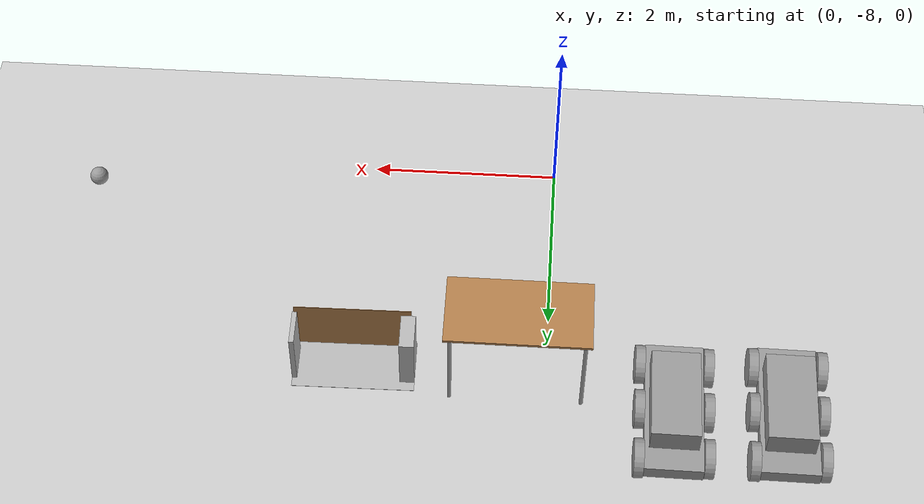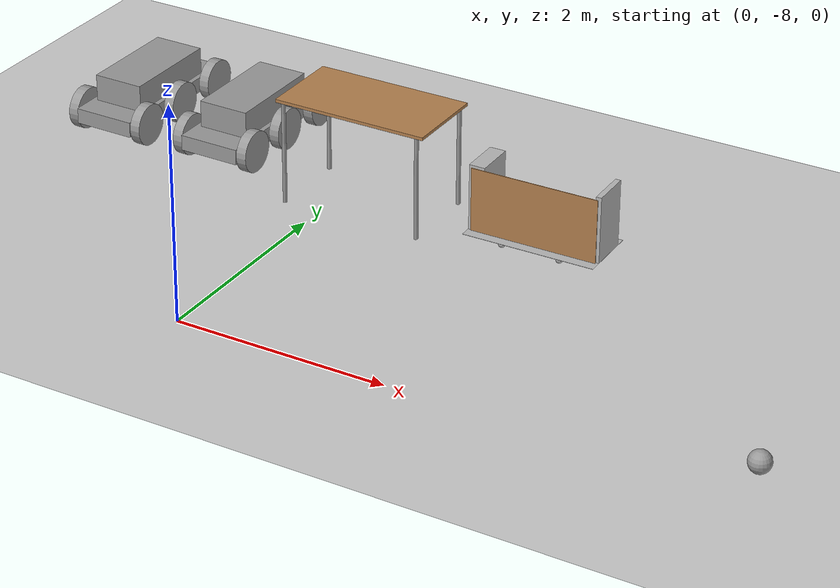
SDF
<sdf version="1.6">
 <world name="default">
  <model name="ground_plane">
   <static>1</static>
   <link name="link">
    <collision name="collision">
     <geometry><plane><normal>0 0 1</normal><size>100 100</size></plane></geometry>
     <surface><friction><ode><mu>100</mu><mu2>50</mu2></ode></friction></surface>
    </collision>
    <visual name="visual">
     <cast_shadows>0</cast_shadows>
     <geometry><plane><normal>0 0 1</normal><size>100 100</size></plane></geometry>
     <material>
      <script><uri>file://media/materials/scripts/gazebo.material</uri><name>Gazebo/Grey</name></script>
     </material>
    </visual>
   </link>
  </model>
  <model name="Humanoid_Robot">
   <link name="link_0">
    <pose>0 -0.004307 -0.025 0 -0 0</pose>
    <inertial>
     <mass>1</mass>
     <inertia>
      <ixx>0.166667</ixx>
      <ixy>0</ixy>
      <ixz>0</ixz>
      <iyy>0.166667</iyy>
      <iyz>0</iyz>
      <izz>0.166667</izz>
     </inertia>
    </inertial>
    <visual name="visual">
     <geometry><box><size>0.6 1.5 0.15</size></box></geometry>
     <material>
      <lighting>1</lighting>
      <script><uri>file://media/materials/scripts/gazebo.material</uri><name>Gazebo/Grey</name></script>
      <shader type="pixel"><normal_map>__default__</normal_map></shader>
      <ambient>0.3 0.3 0.3 1</ambient>
      <diffuse>0.7 0.7 0.7 1</diffuse>
      <specular>0.01 0.01 0.01 1</specular>
      <emissive>0 0 0 1</emissive>
     </material>
    </visual>
    <collision name="collision">
     <geometry><box><size>0.6 1.5 0.15</size></box></geometry>
     <surface>
      <friction>
       <ode><mu>1</mu><mu2>1</mu2><fdir1>0 0 0</fdir1><slip1>0</slip1><slip2>0</slip2></ode>
       <torsional>
        <coefficient>1</coefficient>
        <patch_radius>0</patch_radius>
        <surface_radius>0</surface_radius>
        <use_patch_radius>1</use_patch_radius>
        <ode><slip>0</slip></ode>
       </torsional>
      </friction>
      <bounce><restitution_coefficient>0</restitution_coefficient><threshold>1e+06</threshold></bounce>
      <contact>
       <collide_without_contact>0</collide_without_contact>
       <collide_without_contact_bitmask>1</collide_without_contact_bitmask>
       <collide_bitmask>1</collide_bitmask>
       <ode>
        <soft_cfm>0</soft_cfm>
        <soft_erp>0.2</soft_erp>
        <kp>1e+13</kp>
        <kd>1</kd>
        <max_vel>0.01</max_vel>
        <min_depth>0</min_depth>
       </ode>
       <bullet>
        <split_impulse>1</split_impulse>
        <split_impulse_penetration_threshold>-0.01</split_impulse_penetration_threshold>
        <soft_cfm>0</soft_cfm>
        <soft_erp>0.2</soft_erp>
        <kp>1e+13</kp>
        <kd>1</kd>
       </bullet>
      </contact>
     </surface>
    </collision>
   </link>
   <link name="link_1_clone">
    <pose>-0.351854 0.545219 -0.025 1.57079 -9.6e-05 -1.56152</pose>
    <inertial>
     <mass>1</mass>
     <inertia><ixx>0.145833</ixx><ixy>0</ixy><ixz>0</ixz><iyy>0.145833</iyy><iyz>0</iyz><izz>0.125</izz></inertia>
    </inertial>
    <visual name="visual">
     <geometry><cylinder><radius>0.2</radius><length>0.1</length></cylinder></geometry>
     <material>
      <lighting>1</lighting>
      <script><uri>file://media/materials/scripts/gazebo.material</uri><name>Gazebo/Grey</name></script>
      <shader type="pixel"><normal_map>__default__</normal_map></shader>
      <ambient>0.3 0.3 0.3 1</ambient>
      <diffuse>0.7 0.7 0.7 1</diffuse>
      <specular>0.01 0.01 0.01 1</specular>
      <emissive>0 0 0 1</emissive>
     </material>
    </visual>
    <collision name="collision">
     <geometry><cylinder><radius>0.2</radius><length>0.1</length></cylinder></geometry>
     <surface>
      <friction>
       <ode><mu>1</mu><mu2>1</mu2><fdir1>0 0 0</fdir1><slip1>0</slip1><slip2>0</slip2></ode>
       <torsional>
        <coefficient>1</coefficient>
        <patch_radius>0</patch_radius>
        <surface_radius>0</surface_radius>
        <use_patch_radius>1</use_patch_radius>
        <ode><slip>0</slip></ode>
       </torsional>
      </friction>
      <bounce><restitution_coefficient>0</restitution_coefficient><threshold>1e+06</threshold></bounce>
      <contact>
       <collide_without_contact>0</collide_without_contact>
       <collide_without_contact_bitmask>1</collide_without_contact_bitmask>
       <collide_bitmask>1</collide_bitmask>
       <ode>
        <soft_cfm>0</soft_cfm>
        <soft_erp>0.2</soft_erp>
        <kp>1e+13</kp>
        <kd>1</kd>
        <max_vel>0.01</max_vel>
        <min_depth>0</min_depth>
       </ode>
       <bullet>
        <split_impulse>1</split_impulse>
        <split_impulse_penetration_threshold>-0.01</split_impulse_penetration_threshold>
        <soft_cfm>0</soft_cfm>
        <soft_erp>0.2</soft_erp>
        <kp>1e+13</kp>
        <kd>1</kd>
       </bullet>
      </contact>
     </surface>
    </collision>
   </link>
   <link name="link_1_clone_0">
    <pose>-0.351854 -0.553832 -0.025 1.57079 -9.6e-05 -1.56152</pose>
    <inertial>
     <mass>1</mass>
     <inertia><ixx>0.145833</ixx><ixy>0</ixy><ixz>0</ixz><iyy>0.145833</iyy><iyz>0</iyz><izz>0.125</izz></inertia>
    </inertial>
    <visual name="visual">
     <geometry><cylinder><radius>0.2</radius><length>0.1</length></cylinder></geometry>
     <material>
      <lighting>1</lighting>
      <script><uri>file://media/materials/scripts/gazebo.material</uri><name>Gazebo/Grey</name></script>
      <shader type="pixel"><normal_map>__default__</normal_map></shader>
      <ambient>0.3 0.3 0.3 1</ambient>
      <diffuse>0.7 0.7 0.7 1</diffuse>
      <specular>0.01 0.01 0.01 1</specular>
      <emissive>0 0 0 1</emissive>
     </material>
    </visual>
    <collision name="collision">
     <geometry><cylinder><radius>0.2</radius><length>0.1</length></cylinder></geometry>
     <surface>
      <friction>
       <ode><mu>1</mu><mu2>1</mu2><fdir1>0 0 0</fdir1><slip1>0</slip1><slip2>0</slip2></ode>
       <torsional>
        <coefficient>1</coefficient>
        <patch_radius>0</patch_radius>
        <surface_radius>0</surface_radius>
        <use_patch_radius>1</use_patch_radius>
        <ode><slip>0</slip></ode>
       </torsional>
      </friction>
      <bounce><restitution_coefficient>0</restitution_coefficient><threshold>1e+06</threshold></bounce>
      <contact>
       <collide_without_contact>0</collide_without_contact>
       <collide_without_contact_bitmask>1</collide_without_contact_bitmask>
       <collide_bitmask>1</collide_bitmask>
       <ode>
        <soft_cfm>0</soft_cfm>
        <soft_erp>0.2</soft_erp>
        <kp>1e+13</kp>
        <kd>1</kd>
        <max_vel>0.01</max_vel>
        <min_depth>0</min_depth>
       </ode>
       <bullet>
        <split_impulse>1</split_impulse>
        <split_impulse_penetration_threshold>-0.01</split_impulse_penetration_threshold>
        <soft_cfm>0</soft_cfm>
        <soft_erp>0.2</soft_erp>
        <kp>1e+13</kp>
        <kd>1</kd>
       </bullet>
      </contact>
     </surface>
    </collision>
   </link>
   <link name="link_1_clone_1">
    <pose>0.351854 0.579674 -0.025 1.57079 -9.6e-05 -1.56152</pose>
    <inertial>
     <mass>1</mass>
     <inertia><ixx>0.145833</ixx><ixy>0</ixy><ixz>0</ixz><iyy>0.145833</iyy><iyz>0</iyz><izz>0.125</izz></inertia>
    </inertial>
    <visual name="visual">
     <geometry><cylinder><radius>0.2</radius><length>0.1</length></cylinder></geometry>
     <material>
      <lighting>1</lighting>
      <script><uri>file://media/materials/scripts/gazebo.material</uri><name>Gazebo/Grey</name></script>
      <shader type="pixel"><normal_map>__default__</normal_map></shader>
      <ambient>0.3 0.3 0.3 1</ambient>
      <diffuse>0.7 0.7 0.7 1</diffuse>
      <specular>0.01 0.01 0.01 1</specular>
      <emissive>0 0 0 1</emissive>
     </material>
    </visual>
    <collision name="collision">
     <geometry><cylinder><radius>0.2</radius><length>0.1</length></cylinder></geometry>
     <surface>
      <friction>
       <ode><mu>1</mu><mu2>1</mu2><fdir1>0 0 0</fdir1><slip1>0</slip1><slip2>0</slip2></ode>
       <torsional>
        <coefficient>1</coefficient>
        <patch_radius>0</patch_radius>
        <surface_radius>0</surface_radius>
        <use_patch_radius>1</use_patch_radius>
        <ode><slip>0</slip></ode>
       </torsional>
      </friction>
      <bounce><restitution_coefficient>0</restitution_coefficient><threshold>1e+06</threshold></bounce>
      <contact>
       <collide_without_contact>0</collide_without_contact>
       <collide_without_contact_bitmask>1</collide_without_contact_bitmask>
       <collide_bitmask>1</collide_bitmask>
       <ode>
        <soft_cfm>0</soft_cfm>
        <soft_erp>0.2</soft_erp>
        <kp>1e+13</kp>
        <kd>1</kd>
        <max_vel>0.01</max_vel>
        <min_depth>0</min_depth>
       </ode>
       <bullet>
        <split_impulse>1</split_impulse>
        <split_impulse_penetration_threshold>-0.01</split_impulse_penetration_threshold>
        <soft_cfm>0</soft_cfm>
        <soft_erp>0.2</soft_erp>
        <kp>1e+13</kp>
        <kd>1</kd>
       </bullet>
      </contact>
     </surface>
    </collision>
   </link>
   <link name="link_1_clone_1_clone">
    <pose>0.351854 -0.004307 -0.025 1.57079 -9.6e-05 -1.56152</pose>
    <inertial>
     <mass>1</mass>
     <inertia><ixx>0.145833</ixx><ixy>0</ixy><ixz>0</ixz><iyy>0.145833</iyy><iyz>0</iyz><izz>0.125</izz></inertia>
    </inertial>
    <visual name="visual">
     <geometry><cylinder><radius>0.2</radius><length>0.1</length></cylinder></geometry>
     <material>
      <lighting>1</lighting>
      <script><uri>file://media/materials/scripts/gazebo.material</uri><name>Gazebo/Grey</name></script>
      <shader type="pixel"><normal_map>__default__</normal_map></shader>
      <ambient>0.3 0.3 0.3 1</ambient>
      <diffuse>0.7 0.7 0.7 1</diffuse>
      <specular>0.01 0.01 0.01 1</specular>
      <emissive>0 0 0 1</emissive>
     </material>
    </visual>
    <collision name="collision">
     <geometry><cylinder><radius>0.2</radius><length>0.1</length></cylinder></geometry>
     <surface>
      <friction>
       <ode><mu>1</mu><mu2>1</mu2><fdir1>0 0 0</fdir1><slip1>0</slip1><slip2>0</slip2></ode>
       <torsional>
        <coefficient>1</coefficient>
        <patch_radius>0</patch_radius>
        <surface_radius>0</surface_radius>
        <use_patch_radius>1</use_patch_radius>
        <ode><slip>0</slip></ode>
       </torsional>
      </friction>
      <bounce><restitution_coefficient>0</restitution_coefficient><threshold>1e+06</threshold></bounce>
      <contact>
       <collide_without_contact>0</collide_without_contact>
       <collide_without_contact_bitmask>1</collide_without_contact_bitmask>
       <collide_bitmask>1</collide_bitmask>
       <ode>
        <soft_cfm>0</soft_cfm>
        <soft_erp>0.2</soft_erp>
        <kp>1e+13</kp>
        <kd>1</kd>
        <max_vel>0.01</max_vel>
        <min_depth>0</min_depth>
       </ode>
       <bullet>
        <split_impulse>1</split_impulse>
        <split_impulse_penetration_threshold>-0.01</split_impulse_penetration_threshold>
        <soft_cfm>0</soft_cfm>
        <soft_erp>0.2</soft_erp>
        <kp>1e+13</kp>
        <kd>1</kd>
       </bullet>
      </contact>
     </surface>
    </collision>
   </link>
   <link name="link_1_clone_2">
    <pose>-0.351854 -0.004307 -0.025 1.57079 -9.6e-05 -1.56152</pose>
    <inertial>
     <mass>1</mass>
     <inertia><ixx>0.145833</ixx><ixy>0</ixy><ixz>0</ixz><iyy>0.145833</iyy><iyz>0</iyz><izz>0.125</izz></inertia>
    </inertial>
    <visual name="visual">
     <geometry><cylinder><radius>0.2</radius><length>0.1</length></cylinder></geometry>
     <material>
      <lighting>1</lighting>
      <script><uri>file://media/materials/scripts/gazebo.material</uri><name>Gazebo/Grey</name></script>
      <shader type="pixel"><normal_map>__default__</normal_map></shader>
      <ambient>0.3 0.3 0.3 1</ambient>
      <diffuse>0.7 0.7 0.7 1</diffuse>
      <specular>0.01 0.01 0.01 1</specular>
      <emissive>0 0 0 1</emissive>
     </material>
    </visual>
    <collision name="collision">
     <geometry><cylinder><radius>0.2</radius><length>0.1</length></cylinder></geometry>
     <surface>
      <friction>
       <ode><mu>1</mu><mu2>1</mu2><fdir1>0 0 0</fdir1><slip1>0</slip1><slip2>0</slip2></ode>
       <torsional>
        <coefficient>1</coefficient>
        <patch_radius>0</patch_radius>
        <surface_radius>0</surface_radius>
        <use_patch_radius>1</use_patch_radius>
        <ode><slip>0</slip></ode>
       </torsional>
      </friction>
      <bounce><restitution_coefficient>0</restitution_coefficient><threshold>1e+06</threshold></bounce>
      <contact>
       <collide_without_contact>0</collide_without_contact>
       <collide_without_contact_bitmask>1</collide_without_contact_bitmask>
       <collide_bitmask>1</collide_bitmask>
       <ode>
        <soft_cfm>0</soft_cfm>
        <soft_erp>0.2</soft_erp>
        <kp>1e+13</kp>
        <kd>1</kd>
        <max_vel>0.01</max_vel>
        <min_depth>0</min_depth>
       </ode>
       <bullet>
        <split_impulse>1</split_impulse>
        <split_impulse_penetration_threshold>-0.01</split_impulse_penetration_threshold>
        <soft_cfm>0</soft_cfm>
        <soft_erp>0.2</soft_erp>
        <kp>1e+13</kp>
        <kd>1</kd>
       </bullet>
      </contact>
     </surface>
    </collision>
   </link>
   <link name="link_1_clone_3">
    <pose>0.351854 -0.553832 -0.025 1.57079 -9.6e-05 -1.56152</pose>
    <inertial>
     <mass>1</mass>
     <inertia><ixx>0.145833</ixx><ixy>0</ixy><ixz>0</ixz><iyy>0.145833</iyy><iyz>0</iyz><izz>0.125</izz></inertia>
    </inertial>
    <visual name="visual">
     <geometry><cylinder><radius>0.2</radius><length>0.1</length></cylinder></geometry>
     <material>
      <lighting>1</lighting>
      <script><uri>file://media/materials/scripts/gazebo.material</uri><name>Gazebo/Grey</name></script>
      <shader type="pixel"><normal_map>__default__</normal_map></shader>
      <ambient>0.3 0.3 0.3 1</ambient>
      <diffuse>0.7 0.7 0.7 1</diffuse>
      <specular>0.01 0.01 0.01 1</specular>
      <emissive>0 0 0 1</emissive>
     </material>
    </visual>
    <collision name="collision">
     <geometry><cylinder><radius>0.2</radius><length>0.1</length></cylinder></geometry>
     <surface>
      <friction>
       <ode><mu>1</mu><mu2>1</mu2><fdir1>0 0 0</fdir1><slip1>0</slip1><slip2>0</slip2></ode>
       <torsional>
        <coefficient>1</coefficient>
        <patch_radius>0</patch_radius>
        <surface_radius>0</surface_radius>
        <use_patch_radius>1</use_patch_radius>
        <ode><slip>0</slip></ode>
       </torsional>
      </friction>
      <bounce><restitution_coefficient>0</restitution_coefficient><threshold>1e+06</threshold></bounce>
      <contact>
       <collide_without_contact>0</collide_without_contact>
       <collide_without_contact_bitmask>1</collide_without_contact_bitmask>
       <collide_bitmask>1</collide_bitmask>
       <ode>
        <soft_cfm>0</soft_cfm>
        <soft_erp>0.2</soft_erp>
        <kp>1e+13</kp>
        <kd>1</kd>
        <max_vel>0.01</max_vel>
        <min_depth>0</min_depth>
       </ode>
       <bullet>
        <split_impulse>1</split_impulse>
        <split_impulse_penetration_threshold>-0.01</split_impulse_penetration_threshold>
        <soft_cfm>0</soft_cfm>
        <soft_erp>0.2</soft_erp>
        <kp>1e+13</kp>
        <kd>1</kd>
       </bullet>
      </contact>
     </surface>
    </collision>
   </link>
   <link name="link_2">
    <pose>0 -0.004307 0.175 0 -0 0</pose>
    <inertial>
     <mass>1</mass>
     <inertia>
      <ixx>0.166667</ixx>
      <ixy>0</ixy>
      <ixz>0</ixz>
      <iyy>0.166667</iyy>
      <iyz>0</iyz>
      <izz>0.166667</izz>
     </inertia>
    </inertial>
    <visual name="visual">
     <geometry><box><size>0.5 1 0.27</size></box></geometry>
     <material>
      <lighting>1</lighting>
      <script><uri>file://media/materials/scripts/gazebo.material</uri><name>Gazebo/Grey</name></script>
      <shader type="pixel"><normal_map>__default__</normal_map></shader>
      <ambient>0.3 0.3 0.3 1</ambient>
      <diffuse>0.7 0.7 0.7 1</diffuse>
      <specular>0.01 0.01 0.01 1</specular>
      <emissive>0 0 0 1</emissive>
     </material>
    </visual>
    <collision name="collision">
     <geometry><box><size>0.5 1 0.3</size></box></geometry>
     <surface>
      <friction>
       <ode><mu>1</mu><mu2>1</mu2><fdir1>0 0 0</fdir1><slip1>0</slip1><slip2>0</slip2></ode>
       <torsional>
        <coefficient>1</coefficient>
        <patch_radius>0</patch_radius>
        <surface_radius>0</surface_radius>
        <use_patch_radius>1</use_patch_radius>
        <ode><slip>0</slip></ode>
       </torsional>
      </friction>
      <bounce><restitution_coefficient>0</restitution_coefficient><threshold>1e+06</threshold></bounce>
      <contact>
       <collide_without_contact>0</collide_without_contact>
       <collide_without_contact_bitmask>1</collide_without_contact_bitmask>
       <collide_bitmask>1</collide_bitmask>
       <ode>
        <soft_cfm>0</soft_cfm>
        <soft_erp>0.2</soft_erp>
        <kp>1e+13</kp>
        <kd>1</kd>
        <max_vel>0.01</max_vel>
        <min_depth>0</min_depth>
       </ode>
       <bullet>
        <split_impulse>1</split_impulse>
        <split_impulse_penetration_threshold>-0.01</split_impulse_penetration_threshold>
        <soft_cfm>0</soft_cfm>
        <soft_erp>0.2</soft_erp>
        <kp>1e+13</kp>
        <kd>1</kd>
       </bullet>
      </contact>
     </surface>
    </collision>
   </link>
   <joint name="link_0_JOINT_0" type="revolute">
    <parent>link_0</parent>
    <child>link_1_clone_0</child>
    <axis>
     <xyz>0 0 1</xyz>
     <use_parent_model_frame>0</use_parent_model_frame>
     <limit>
      <lower>-1.79769e+308</lower>
      <upper>1.79769e+308</upper>
      <effort>-1</effort>
      <velocity>-1</velocity>
     </limit>
     <dynamics>
      <spring_reference>0</spring_reference>
      <spring_stiffness>0</spring_stiffness>
      <damping>0</damping>
     </dynamics>
    </axis>
    <physics>
     <ode><limit><cfm>0</cfm><erp>0.2</erp></limit><suspension><cfm>0</cfm><erp>0.2</erp></suspension></ode>
    </physics>
   </joint>
   <joint name="link_0_JOINT_10" type="revolute">
    <parent>link_0</parent>
    <child>link_1_clone_1_clone</child>
    <axis>
     <xyz>0 0 -1</xyz>
     <use_parent_model_frame>0</use_parent_model_frame>
     <limit>
      <lower>-1.79769e+308</lower>
      <upper>1.79769e+308</upper>
      <effort>-1</effort>
      <velocity>-1</velocity>
     </limit>
     <dynamics>
      <spring_reference>0</spring_reference>
      <spring_stiffness>0</spring_stiffness>
      <damping>0</damping>
     </dynamics>
    </axis>
    <physics>
     <ode><limit><cfm>0</cfm><erp>0.2</erp></limit><suspension><cfm>0</cfm><erp>0.2</erp></suspension></ode>
    </physics>
   </joint>
   <joint name="link_0_JOINT_2" type="revolute">
    <parent>link_0</parent>
    <child>link_1_clone_3</child>
    <axis>
     <xyz>0 0 -1</xyz>
     <use_parent_model_frame>0</use_parent_model_frame>
     <limit>
      <lower>-1.79769e+308</lower>
      <upper>1.79769e+308</upper>
      <effort>-1</effort>
      <velocity>-1</velocity>
     </limit>
     <dynamics>
      <spring_reference>0</spring_reference>
      <spring_stiffness>0</spring_stiffness>
      <damping>0</damping>
     </dynamics>
    </axis>
    <physics>
     <ode><limit><cfm>0</cfm><erp>0.2</erp></limit><suspension><cfm>0</cfm><erp>0.2</erp></suspension></ode>
    </physics>
   </joint>
   <joint name="link_0_JOINT_3" type="revolute">
    <parent>link_0</parent>
    <child>link_1_clone_1</child>
    <axis>
     <xyz>0 0 -1</xyz>
     <use_parent_model_frame>0</use_parent_model_frame>
     <limit>
      <lower>-1.79769e+308</lower>
      <upper>1.79769e+308</upper>
      <effort>-1</effort>
      <velocity>-1</velocity>
     </limit>
     <dynamics>
      <spring_reference>0</spring_reference>
      <spring_stiffness>0</spring_stiffness>
      <damping>0</damping>
     </dynamics>
    </axis>
    <physics>
     <ode><limit><cfm>0</cfm><erp>0.2</erp></limit><suspension><cfm>0</cfm><erp>0.2</erp></suspension></ode>
    </physics>
   </joint>
   <joint name="link_0_JOINT_4" type="revolute">
    <parent>link_0</parent>
    <child>link_1_clone</child>
    <axis>
     <xyz>0 0 1</xyz>
     <use_parent_model_frame>0</use_parent_model_frame>
     <limit>
      <lower>-1.79769e+308</lower>
      <upper>1.79769e+308</upper>
      <effort>-1</effort>
      <velocity>-1</velocity>
     </limit>
     <dynamics>
      <spring_reference>0</spring_reference>
      <spring_stiffness>0</spring_stiffness>
      <damping>0</damping>
     </dynamics>
    </axis>
    <physics>
     <ode><limit><cfm>0</cfm><erp>0.2</erp></limit><suspension><cfm>0</cfm><erp>0.2</erp></suspension></ode>
    </physics>
   </joint>
   <joint name="link_0_JOINT_6" type="revolute">
    <parent>link_0</parent>
    <child>link_1_clone_2</child>
    <axis>
     <xyz>0 0 1</xyz>
     <use_parent_model_frame>0</use_parent_model_frame>
     <limit>
      <lower>-1.79769e+308</lower>
      <upper>1.79769e+308</upper>
      <effort>-1</effort>
      <velocity>-1</velocity>
     </limit>
     <dynamics>
      <spring_reference>0</spring_reference>
      <spring_stiffness>0</spring_stiffness>
      <damping>0</damping>
     </dynamics>
    </axis>
    <physics>
     <ode><limit><cfm>0</cfm><erp>0.2</erp></limit><suspension><cfm>0</cfm><erp>0.2</erp></suspension></ode>
    </physics>
   </joint>
   <static>0</static>
   <pose>-1.30239 -4.82109 0.224998 0 6e-06 -0.008391</pose>
  </model>
  <model name="table">
   <static>1</static>
   <link name="link">
    <collision name="surface">
     <pose>0 0 1 0 -0 0</pose>
     <geometry><box><size>1.5 0.8 0.03</size></box></geometry>
     <surface><friction><ode><mu>0.6</mu><mu2>0.6</mu2></ode></friction></surface>
    </collision>
    <visual name="visual1">
     <pose>0 0 1 0 -0 0</pose>
     <geometry><box><size>1.5 0.8 0.03</size></box></geometry>
     <material>
      <script><uri>file://media/materials/scripts/gazebo.material</uri><name>Gazebo/Wood</name></script>
     </material>
    </visual>
    <collision name="front_left_leg">
     <pose>0.68 0.38 0.5 0 -0 0</pose>
     <geometry><cylinder><radius>0.02</radius><length>1</length></cylinder></geometry>
    </collision>
    <visual name="front_left_leg">
     <pose>0.68 0.38 0.5 0 -0 0</pose>
     <geometry><cylinder><radius>0.02</radius><length>1</length></cylinder></geometry>
     <material>
      <script><uri>file://media/materials/scripts/gazebo.material</uri><name>Gazebo/Grey</name></script>
     </material>
    </visual>
    <collision name="front_right_leg">
     <pose>0.68 -0.38 0.5 0 -0 0</pose>
     <geometry><cylinder><radius>0.02</radius><length>1</length></cylinder></geometry>
    </collision>
    <visual name="front_right_leg">
     <pose>0.68 -0.38 0.5 0 -0 0</pose>
     <geometry><cylinder><radius>0.02</radius><length>1</length></cylinder></geometry>
     <material>
      <script><uri>file://media/materials/scripts/gazebo.material</uri><name>Gazebo/Grey</name></script>
     </material>
    </visual>
    <collision name="back_right_leg">
     <pose>-0.68 -0.38 0.5 0 -0 0</pose>
     <geometry><cylinder><radius>0.02</radius><length>1</length></cylinder></geometry>
    </collision>
    <visual name="back_right_leg">
     <pose>-0.68 -0.38 0.5 0 -0 0</pose>
     <geometry><cylinder><radius>0.02</radius><length>1</length></cylinder></geometry>
     <material>
      <script><uri>file://media/materials/scripts/gazebo.material</uri><name>Gazebo/Grey</name></script>
     </material>
    </visual>
    <collision name="back_left_leg">
     <pose>-0.68 0.38 0.5 0 -0 0</pose>
     <geometry><cylinder><radius>0.02</radius><length>1</length></cylinder></geometry>
    </collision>
    <visual name="back_left_leg">
     <pose>-0.68 0.38 0.5 0 -0 0</pose>
     <geometry><cylinder><radius>0.02</radius><length>1</length></cylinder></geometry>
     <material>
      <script><uri>file://media/materials/scripts/gazebo.material</uri><name>Gazebo/Grey</name></script>
     </material>
    </visual>
   </link>
   <pose>0.313078 -5.37194 0 0 -0 0</pose>
  </model>
  <model name="frc2016_sallyport">
   <link name="base">
    <inertial>
     <mass>50</mass>
     <pose>0 0 0.35406 0 -0 0</pose>
     <inertia><ixx>0.727808</ixx><ixy>0</ixy><ixz>0</ixz><iyy>1.77488</iyy><iyz>0</iyz><izz>1.64109</izz></inertia>
    </inertial>
    <visual name="platform">
     <pose>0 0 0.06974 0 -0 0</pose>
     <geometry><box><size>1.27 0.5969 0.003175</size></box></geometry>
    </visual>
    <collision name="platform">
     <pose>0 0 0.06974 0 -0 0</pose>
     <geometry><box><size>1.27 0.5969 0.003175</size></box></geometry>
    </collision>
    <visual name="left_column">
     <pose>-0.5588 0.00318 0.38876 0 -0 0</pose>
     <geometry><box><size>0.1524 0.38735 0.635</size></box></geometry>
    </visual>
    <collision name="left_column">
     <pose>-0.5588 0.00318 0.38876 0 -0 0</pose>
     <geometry><box><size>0.1524 0.38735 0.635</size></box></geometry>
    </collision>
    <visual name="right_column">
     <pose>0.6096 0.00635 0.38876 0 -0 0</pose>
     <geometry><box><size>0.0508 0.381 0.635</size></box></geometry>
    </visual>
    <collision name="right_column">
     <pose>0.6096 0.00635 0.38876 0 -0 0</pose>
     <geometry><box><size>0.0508 0.381 0.635</size></box></geometry>
    </collision>
    <visual name="castor1">
     <pose>-0.45886 0.15389 0.03487 0 -0 0</pose>
     <geometry><sphere><radius>0.03487</radius></sphere></geometry>
    </visual>
    <collision name="castor1">
     <pose>-0.45886 0.15389 0.03487 0 -0 0</pose>
     <geometry><sphere><radius>0.03487</radius></sphere></geometry>
    </collision>
    <visual name="castor2">
     <pose>-0.28117 -0.22559 0.03487 0 -0 0</pose>
     <geometry><sphere><radius>0.03487</radius></sphere></geometry>
    </visual>
    <collision name="castor2">
     <pose>-0.28117 -0.22559 0.03487 0 -0 0</pose>
     <geometry><sphere><radius>0.03487</radius></sphere></geometry>
    </collision>
    <visual name="castor3">
     <pose>0.27933 -0.2272 0.03487 0 -0 0</pose>
     <geometry><sphere><radius>0.03487</radius></sphere></geometry>
    </visual>
    <collision name="castor3">
     <pose>0.27933 -0.2272 0.03487 0 -0 0</pose>
     <geometry><sphere><radius>0.03487</radius></sphere></geometry>
    </collision>
    <visual name="castor4">
     <pose>0.4571 0.15424 0.03487 0 -0 0</pose>
     <geometry><sphere><radius>0.03487</radius></sphere></geometry>
    </visual>
    <collision name="castor4">
     <pose>0.4571 0.15424 0.03487 0 -0 0</pose>
     <geometry><sphere><radius>0.03487</radius></sphere></geometry>
    </collision>
   </link>
   <link name="door">
    <pose>0.02255 -0.24321 0.40332 0 -0 0</pose>
    <inertial>
     <pose>0 0 0 -1.5707 0 0</pose>
     <mass>2</mass>
     <inertia>
      <ixx>0.0619421</ixx>
      <ixy>0</ixy>
      <ixz>0</ixz>
      <iyy>0.246462</iyy>
      <iyz>0</iyz>
      <izz>0.30839</izz>
     </inertia>
    </inertial>
    <visual name="visual">
     <geometry><box><size>1.21603 0.00635 0.6096</size></box></geometry>
     <material><script><name>Gazebo/WoodFloor</name><uri>__default__</uri></script></material>
    </visual>
    <collision name="collision"><geometry><box><size>1.21603 0.00635 0.6096</size></box></geometry></collision>
   </link>
   <joint name="door_joint" type="revolute">
    <pose>-0.608015 0 0 0 -0 0</pose>
    <parent>base</parent>
    <child>door</child>
    <axis>
     <xyz>0 0 1</xyz>
     <limit><lower>-3.1415</lower><upper>0</upper></limit>
     <use_parent_model_frame>0</use_parent_model_frame>
     <dynamics><spring_reference>0</spring_reference><spring_stiffness>0</spring_stiffness></dynamics>
    </axis>
   </joint>
   <pose>1.9972 -5.27543 0 -2e-06 -0 0.012791</pose>
  </model>
  <model name="Humanoid_Robot_clone">
   <link name="link_0">
    <pose>0 -0.004307 -0.025 0 -0 0</pose>
    <inertial>
     <mass>1</mass>
     <inertia>
      <ixx>0.166667</ixx>
      <ixy>0</ixy>
      <ixz>0</ixz>
      <iyy>0.166667</iyy>
      <iyz>0</iyz>
      <izz>0.166667</izz>
     </inertia>
    </inertial>
    <visual name="visual">
     <geometry><box><size>0.6 1.5 0.15</size></box></geometry>
     <material>
      <lighting>1</lighting>
      <script><uri>file://media/materials/scripts/gazebo.material</uri><name>Gazebo/Grey</name></script>
      <shader type="pixel"><normal_map>__default__</normal_map></shader>
      <ambient>0.3 0.3 0.3 1</ambient>
      <diffuse>0.7 0.7 0.7 1</diffuse>
      <specular>0.01 0.01 0.01 1</specular>
      <emissive>0 0 0 1</emissive>
     </material>
    </visual>
    <collision name="collision">
     <geometry><box><size>0.6 1.5 0.15</size></box></geometry>
     <surface>
      <friction>
       <ode><mu>1</mu><mu2>1</mu2><fdir1>0 0 0</fdir1><slip1>0</slip1><slip2>0</slip2></ode>
       <torsional>
        <coefficient>1</coefficient>
        <patch_radius>0</patch_radius>
        <surface_radius>0</surface_radius>
        <use_patch_radius>1</use_patch_radius>
        <ode><slip>0</slip></ode>
       </torsional>
      </friction>
      <bounce><restitution_coefficient>0</restitution_coefficient><threshold>1e+06</threshold></bounce>
      <contact>
       <collide_without_contact>0</collide_without_contact>
       <collide_without_contact_bitmask>1</collide_without_contact_bitmask>
       <collide_bitmask>1</collide_bitmask>
       <ode>
        <soft_cfm>0</soft_cfm>
        <soft_erp>0.2</soft_erp>
        <kp>1e+13</kp>
        <kd>1</kd>
        <max_vel>0.01</max_vel>
        <min_depth>0</min_depth>
       </ode>
       <bullet>
        <split_impulse>1</split_impulse>
        <split_impulse_penetration_threshold>-0.01</split_impulse_penetration_threshold>
        <soft_cfm>0</soft_cfm>
        <soft_erp>0.2</soft_erp>
        <kp>1e+13</kp>
        <kd>1</kd>
       </bullet>
      </contact>
     </surface>
    </collision>
   </link>
   <link name="link_1_clone">
    <pose>-0.351854 0.545219 -0.025 1.57079 -9.6e-05 -1.56152</pose>
    <inertial>
     <mass>1</mass>
     <inertia><ixx>0.145833</ixx><ixy>0</ixy><ixz>0</ixz><iyy>0.145833</iyy><iyz>0</iyz><izz>0.125</izz></inertia>
    </inertial>
    <visual name="visual">
     <geometry><cylinder><radius>0.2</radius><length>0.1</length></cylinder></geometry>
     <material>
      <lighting>1</lighting>
      <script><uri>file://media/materials/scripts/gazebo.material</uri><name>Gazebo/Grey</name></script>
      <shader type="pixel"><normal_map>__default__</normal_map></shader>
      <ambient>0.3 0.3 0.3 1</ambient>
      <diffuse>0.7 0.7 0.7 1</diffuse>
      <specular>0.01 0.01 0.01 1</specular>
      <emissive>0 0 0 1</emissive>
     </material>
    </visual>
    <collision name="collision">
     <geometry><cylinder><radius>0.2</radius><length>0.1</length></cylinder></geometry>
     <surface>
      <friction>
       <ode><mu>1</mu><mu2>1</mu2><fdir1>0 0 0</fdir1><slip1>0</slip1><slip2>0</slip2></ode>
       <torsional>
        <coefficient>1</coefficient>
        <patch_radius>0</patch_radius>
        <surface_radius>0</surface_radius>
        <use_patch_radius>1</use_patch_radius>
        <ode><slip>0</slip></ode>
       </torsional>
      </friction>
      <bounce><restitution_coefficient>0</restitution_coefficient><threshold>1e+06</threshold></bounce>
      <contact>
       <collide_without_contact>0</collide_without_contact>
       <collide_without_contact_bitmask>1</collide_without_contact_bitmask>
       <collide_bitmask>1</collide_bitmask>
       <ode>
        <soft_cfm>0</soft_cfm>
        <soft_erp>0.2</soft_erp>
        <kp>1e+13</kp>
        <kd>1</kd>
        <max_vel>0.01</max_vel>
        <min_depth>0</min_depth>
       </ode>
       <bullet>
        <split_impulse>1</split_impulse>
        <split_impulse_penetration_threshold>-0.01</split_impulse_penetration_threshold>
        <soft_cfm>0</soft_cfm>
        <soft_erp>0.2</soft_erp>
        <kp>1e+13</kp>
        <kd>1</kd>
       </bullet>
      </contact>
     </surface>
    </collision>
   </link>
   <link name="link_1_clone_0">
    <pose>-0.351854 -0.553832 -0.025 1.57079 -9.6e-05 -1.56152</pose>
    <inertial>
     <mass>1</mass>
     <inertia><ixx>0.145833</ixx><ixy>0</ixy><ixz>0</ixz><iyy>0.145833</iyy><iyz>0</iyz><izz>0.125</izz></inertia>
    </inertial>
    <visual name="visual">
     <geometry><cylinder><radius>0.2</radius><length>0.1</length></cylinder></geometry>
     <material>
      <lighting>1</lighting>
      <script><uri>file://media/materials/scripts/gazebo.material</uri><name>Gazebo/Grey</name></script>
      <shader type="pixel"><normal_map>__default__</normal_map></shader>
      <ambient>0.3 0.3 0.3 1</ambient>
      <diffuse>0.7 0.7 0.7 1</diffuse>
      <specular>0.01 0.01 0.01 1</specular>
      <emissive>0 0 0 1</emissive>
     </material>
    </visual>
    <collision name="collision">
     <geometry><cylinder><radius>0.2</radius><length>0.1</length></cylinder></geometry>
     <surface>
      <friction>
       <ode><mu>1</mu><mu2>1</mu2><fdir1>0 0 0</fdir1><slip1>0</slip1><slip2>0</slip2></ode>
       <torsional>
        <coefficient>1</coefficient>
        <patch_radius>0</patch_radius>
        <surface_radius>0</surface_radius>
        <use_patch_radius>1</use_patch_radius>
        <ode><slip>0</slip></ode>
       </torsional>
      </friction>
      <bounce><restitution_coefficient>0</restitution_coefficient><threshold>1e+06</threshold></bounce>
      <contact>
       <collide_without_contact>0</collide_without_contact>
       <collide_without_contact_bitmask>1</collide_without_contact_bitmask>
       <collide_bitmask>1</collide_bitmask>
       <ode>
        <soft_cfm>0</soft_cfm>
        <soft_erp>0.2</soft_erp>
        <kp>1e+13</kp>
        <kd>1</kd>
        <max_vel>0.01</max_vel>
        <min_depth>0</min_depth>
       </ode>
       <bullet>
        <split_impulse>1</split_impulse>
        <split_impulse_penetration_threshold>-0.01</split_impulse_penetration_threshold>
        <soft_cfm>0</soft_cfm>
        <soft_erp>0.2</soft_erp>
        <kp>1e+13</kp>
        <kd>1</kd>
       </bullet>
      </contact>
     </surface>
    </collision>
   </link>
   <link name="link_1_clone_1">
    <pose>0.351854 0.579674 -0.025 1.57079 -9.6e-05 -1.56152</pose>
    <inertial>
     <mass>1</mass>
     <inertia><ixx>0.145833</ixx><ixy>0</ixy><ixz>0</ixz><iyy>0.145833</iyy><iyz>0</iyz><izz>0.125</izz></inertia>
    </inertial>
    <visual name="visual">
     <geometry><cylinder><radius>0.2</radius><length>0.1</length></cylinder></geometry>
     <material>
      <lighting>1</lighting>
      <script><uri>file://media/materials/scripts/gazebo.material</uri><name>Gazebo/Grey</name></script>
      <shader type="pixel"><normal_map>__default__</normal_map></shader>
      <ambient>0.3 0.3 0.3 1</ambient>
      <diffuse>0.7 0.7 0.7 1</diffuse>
      <specular>0.01 0.01 0.01 1</specular>
      <emissive>0 0 0 1</emissive>
     </material>
    </visual>
    <collision name="collision">
     <geometry><cylinder><radius>0.2</radius><length>0.1</length></cylinder></geometry>
     <surface>
      <friction>
       <ode><mu>1</mu><mu2>1</mu2><fdir1>0 0 0</fdir1><slip1>0</slip1><slip2>0</slip2></ode>
       <torsional>
        <coefficient>1</coefficient>
        <patch_radius>0</patch_radius>
        <surface_radius>0</surface_radius>
        <use_patch_radius>1</use_patch_radius>
        <ode><slip>0</slip></ode>
       </torsional>
      </friction>
      <bounce><restitution_coefficient>0</restitution_coefficient><threshold>1e+06</threshold></bounce>
      <contact>
       <collide_without_contact>0</collide_without_contact>
       <collide_without_contact_bitmask>1</collide_without_contact_bitmask>
       <collide_bitmask>1</collide_bitmask>
       <ode>
        <soft_cfm>0</soft_cfm>
        <soft_erp>0.2</soft_erp>
        <kp>1e+13</kp>
        <kd>1</kd>
        <max_vel>0.01</max_vel>
        <min_depth>0</min_depth>
       </ode>
       <bullet>
        <split_impulse>1</split_impulse>
        <split_impulse_penetration_threshold>-0.01</split_impulse_penetration_threshold>
        <soft_cfm>0</soft_cfm>
        <soft_erp>0.2</soft_erp>
        <kp>1e+13</kp>
        <kd>1</kd>
       </bullet>
      </contact>
     </surface>
    </collision>
   </link>
   <link name="link_1_clone_1_clone">
    <pose>0.351854 -0.004307 -0.025 1.57079 -9.6e-05 -1.56152</pose>
    <inertial>
     <mass>1</mass>
     <inertia><ixx>0.145833</ixx><ixy>0</ixy><ixz>0</ixz><iyy>0.145833</iyy><iyz>0</iyz><izz>0.125</izz></inertia>
    </inertial>
    <visual name="visual">
     <geometry><cylinder><radius>0.2</radius><length>0.1</length></cylinder></geometry>
     <material>
      <lighting>1</lighting>
      <script><uri>file://media/materials/scripts/gazebo.material</uri><name>Gazebo/Grey</name></script>
      <shader type="pixel"><normal_map>__default__</normal_map></shader>
      <ambient>0.3 0.3 0.3 1</ambient>
      <diffuse>0.7 0.7 0.7 1</diffuse>
      <specular>0.01 0.01 0.01 1</specular>
      <emissive>0 0 0 1</emissive>
     </material>
    </visual>
    <collision name="collision">
     <geometry><cylinder><radius>0.2</radius><length>0.1</length></cylinder></geometry>
     <surface>
      <friction>
       <ode><mu>1</mu><mu2>1</mu2><fdir1>0 0 0</fdir1><slip1>0</slip1><slip2>0</slip2></ode>
       <torsional>
        <coefficient>1</coefficient>
        <patch_radius>0</patch_radius>
        <surface_radius>0</surface_radius>
        <use_patch_radius>1</use_patch_radius>
        <ode><slip>0</slip></ode>
       </torsional>
      </friction>
      <bounce><restitution_coefficient>0</restitution_coefficient><threshold>1e+06</threshold></bounce>
      <contact>
       <collide_without_contact>0</collide_without_contact>
       <collide_without_contact_bitmask>1</collide_without_contact_bitmask>
       <collide_bitmask>1</collide_bitmask>
       <ode>
        <soft_cfm>0</soft_cfm>
        <soft_erp>0.2</soft_erp>
        <kp>1e+13</kp>
        <kd>1</kd>
        <max_vel>0.01</max_vel>
        <min_depth>0</min_depth>
       </ode>
       <bullet>
        <split_impulse>1</split_impulse>
        <split_impulse_penetration_threshold>-0.01</split_impulse_penetration_threshold>
        <soft_cfm>0</soft_cfm>
        <soft_erp>0.2</soft_erp>
        <kp>1e+13</kp>
        <kd>1</kd>
       </bullet>
      </contact>
     </surface>
    </collision>
   </link>
   <link name="link_1_clone_2">
    <pose>-0.351854 -0.004307 -0.025 1.57079 -9.6e-05 -1.56152</pose>
    <inertial>
     <mass>1</mass>
     <inertia><ixx>0.145833</ixx><ixy>0</ixy><ixz>0</ixz><iyy>0.145833</iyy><iyz>0</iyz><izz>0.125</izz></inertia>
    </inertial>
    <visual name="visual">
     <geometry><cylinder><radius>0.2</radius><length>0.1</length></cylinder></geometry>
     <material>
      <lighting>1</lighting>
      <script><uri>file://media/materials/scripts/gazebo.material</uri><name>Gazebo/Grey</name></script>
      <shader type="pixel"><normal_map>__default__</normal_map></shader>
      <ambient>0.3 0.3 0.3 1</ambient>
      <diffuse>0.7 0.7 0.7 1</diffuse>
      <specular>0.01 0.01 0.01 1</specular>
      <emissive>0 0 0 1</emissive>
     </material>
    </visual>
    <collision name="collision">
     <geometry><cylinder><radius>0.2</radius><length>0.1</length></cylinder></geometry>
     <surface>
      <friction>
       <ode><mu>1</mu><mu2>1</mu2><fdir1>0 0 0</fdir1><slip1>0</slip1><slip2>0</slip2></ode>
       <torsional>
        <coefficient>1</coefficient>
        <patch_radius>0</patch_radius>
        <surface_radius>0</surface_radius>
        <use_patch_radius>1</use_patch_radius>
        <ode><slip>0</slip></ode>
       </torsional>
      </friction>
      <bounce><restitution_coefficient>0</restitution_coefficient><threshold>1e+06</threshold></bounce>
      <contact>
       <collide_without_contact>0</collide_without_contact>
       <collide_without_contact_bitmask>1</collide_without_contact_bitmask>
       <collide_bitmask>1</collide_bitmask>
       <ode>
        <soft_cfm>0</soft_cfm>
        <soft_erp>0.2</soft_erp>
        <kp>1e+13</kp>
        <kd>1</kd>
        <max_vel>0.01</max_vel>
        <min_depth>0</min_depth>
       </ode>
       <bullet>
        <split_impulse>1</split_impulse>
        <split_impulse_penetration_threshold>-0.01</split_impulse_penetration_threshold>
        <soft_cfm>0</soft_cfm>
        <soft_erp>0.2</soft_erp>
        <kp>1e+13</kp>
        <kd>1</kd>
       </bullet>
      </contact>
     </surface>
    </collision>
   </link>
   <link name="link_1_clone_3">
    <pose>0.351854 -0.553832 -0.025 1.57079 -9.6e-05 -1.56152</pose>
    <inertial>
     <mass>1</mass>
     <inertia><ixx>0.145833</ixx><ixy>0</ixy><ixz>0</ixz><iyy>0.145833</iyy><iyz>0</iyz><izz>0.125</izz></inertia>
    </inertial>
    <visual name="visual">
     <geometry><cylinder><radius>0.2</radius><length>0.1</length></cylinder></geometry>
     <material>
      <lighting>1</lighting>
      <script><uri>file://media/materials/scripts/gazebo.material</uri><name>Gazebo/Grey</name></script>
      <shader type="pixel"><normal_map>__default__</normal_map></shader>
      <ambient>0.3 0.3 0.3 1</ambient>
      <diffuse>0.7 0.7 0.7 1</diffuse>
      <specular>0.01 0.01 0.01 1</specular>
      <emissive>0 0 0 1</emissive>
     </material>
    </visual>
    <collision name="collision">
     <geometry><cylinder><radius>0.2</radius><length>0.1</length></cylinder></geometry>
     <surface>
      <friction>
       <ode><mu>1</mu><mu2>1</mu2><fdir1>0 0 0</fdir1><slip1>0</slip1><slip2>0</slip2></ode>
       <torsional>
        <coefficient>1</coefficient>
        <patch_radius>0</patch_radius>
        <surface_radius>0</surface_radius>
        <use_patch_radius>1</use_patch_radius>
        <ode><slip>0</slip></ode>
       </torsional>
      </friction>
      <bounce><restitution_coefficient>0</restitution_coefficient><threshold>1e+06</threshold></bounce>
      <contact>
       <collide_without_contact>0</collide_without_contact>
       <collide_without_contact_bitmask>1</collide_without_contact_bitmask>
       <collide_bitmask>1</collide_bitmask>
       <ode>
        <soft_cfm>0</soft_cfm>
        <soft_erp>0.2</soft_erp>
        <kp>1e+13</kp>
        <kd>1</kd>
        <max_vel>0.01</max_vel>
        <min_depth>0</min_depth>
       </ode>
       <bullet>
        <split_impulse>1</split_impulse>
        <split_impulse_penetration_threshold>-0.01</split_impulse_penetration_threshold>
        <soft_cfm>0</soft_cfm>
        <soft_erp>0.2</soft_erp>
        <kp>1e+13</kp>
        <kd>1</kd>
       </bullet>
      </contact>
     </surface>
    </collision>
   </link>
   <link name="link_2">
    <pose>0 -0.004307 0.175 0 -0 0</pose>
    <inertial>
     <mass>1</mass>
     <inertia>
      <ixx>0.166667</ixx>
      <ixy>0</ixy>
      <ixz>0</ixz>
      <iyy>0.166667</iyy>
      <iyz>0</iyz>
      <izz>0.166667</izz>
     </inertia>
    </inertial>
    <visual name="visual">
     <geometry><box><size>0.5 1 0.27</size></box></geometry>
     <material>
      <lighting>1</lighting>
      <script><uri>file://media/materials/scripts/gazebo.material</uri><name>Gazebo/Grey</name></script>
      <shader type="pixel"><normal_map>__default__</normal_map></shader>
      <ambient>0.3 0.3 0.3 1</ambient>
      <diffuse>0.7 0.7 0.7 1</diffuse>
      <specular>0.01 0.01 0.01 1</specular>
      <emissive>0 0 0 1</emissive>
     </material>
    </visual>
    <collision name="collision">
     <geometry><box><size>0.5 1 0.3</size></box></geometry>
     <surface>
      <friction>
       <ode><mu>1</mu><mu2>1</mu2><fdir1>0 0 0</fdir1><slip1>0</slip1><slip2>0</slip2></ode>
       <torsional>
        <coefficient>1</coefficient>
        <patch_radius>0</patch_radius>
        <surface_radius>0</surface_radius>
        <use_patch_radius>1</use_patch_radius>
        <ode><slip>0</slip></ode>
       </torsional>
      </friction>
      <bounce><restitution_coefficient>0</restitution_coefficient><threshold>1e+06</threshold></bounce>
      <contact>
       <collide_without_contact>0</collide_without_contact>
       <collide_without_contact_bitmask>1</collide_without_contact_bitmask>
       <collide_bitmask>1</collide_bitmask>
       <ode>
        <soft_cfm>0</soft_cfm>
        <soft_erp>0.2</soft_erp>
        <kp>1e+13</kp>
        <kd>1</kd>
        <max_vel>0.01</max_vel>
        <min_depth>0</min_depth>
       </ode>
       <bullet>
        <split_impulse>1</split_impulse>
        <split_impulse_penetration_threshold>-0.01</split_impulse_penetration_threshold>
        <soft_cfm>0</soft_cfm>
        <soft_erp>0.2</soft_erp>
        <kp>1e+13</kp>
        <kd>1</kd>
       </bullet>
      </contact>
     </surface>
    </collision>
   </link>
   <joint name="link_0_JOINT_0" type="revolute">
    <parent>link_0</parent>
    <child>link_1_clone_0</child>
    <axis>
     <xyz>0 0 1</xyz>
     <use_parent_model_frame>0</use_parent_model_frame>
     <limit>
      <lower>-1.79769e+308</lower>
      <upper>1.79769e+308</upper>
      <effort>-1</effort>
      <velocity>-1</velocity>
     </limit>
     <dynamics>
      <spring_reference>0</spring_reference>
      <spring_stiffness>0</spring_stiffness>
      <damping>0</damping>
     </dynamics>
    </axis>
    <physics>
     <ode><limit><cfm>0</cfm><erp>0.2</erp></limit><suspension><cfm>0</cfm><erp>0.2</erp></suspension></ode>
    </physics>
   </joint>
   <joint name="link_0_JOINT_10" type="revolute">
    <parent>link_0</parent>
    <child>link_1_clone_1_clone</child>
    <axis>
     <xyz>0 0 -1</xyz>
     <use_parent_model_frame>0</use_parent_model_frame>
     <limit>
      <lower>-1.79769e+308</lower>
      <upper>1.79769e+308</upper>
      <effort>-1</effort>
      <velocity>-1</velocity>
     </limit>
     <dynamics>
      <spring_reference>0</spring_reference>
      <spring_stiffness>0</spring_stiffness>
      <damping>0</damping>
     </dynamics>
    </axis>
    <physics>
     <ode><limit><cfm>0</cfm><erp>0.2</erp></limit><suspension><cfm>0</cfm><erp>0.2</erp></suspension></ode>
    </physics>
   </joint>
   <joint name="link_0_JOINT_2" type="revolute">
    <parent>link_0</parent>
    <child>link_1_clone_3</child>
    <axis>
     <xyz>0 0 -1</xyz>
     <use_parent_model_frame>0</use_parent_model_frame>
     <limit>
      <lower>-1.79769e+308</lower>
      <upper>1.79769e+308</upper>
      <effort>-1</effort>
      <velocity>-1</velocity>
     </limit>
     <dynamics>
      <spring_reference>0</spring_reference>
      <spring_stiffness>0</spring_stiffness>
      <damping>0</damping>
     </dynamics>
    </axis>
    <physics>
     <ode><limit><cfm>0</cfm><erp>0.2</erp></limit><suspension><cfm>0</cfm><erp>0.2</erp></suspension></ode>
    </physics>
   </joint>
   <joint name="link_0_JOINT_3" type="revolute">
    <parent>link_0</parent>
    <child>link_1_clone_1</child>
    <axis>
     <xyz>0 0 -1</xyz>
     <use_parent_model_frame>0</use_parent_model_frame>
     <limit>
      <lower>-1.79769e+308</lower>
      <upper>1.79769e+308</upper>
      <effort>-1</effort>
      <velocity>-1</velocity>
     </limit>
     <dynamics>
      <spring_reference>0</spring_reference>
      <spring_stiffness>0</spring_stiffness>
      <damping>0</damping>
     </dynamics>
    </axis>
    <physics>
     <ode><limit><cfm>0</cfm><erp>0.2</erp></limit><suspension><cfm>0</cfm><erp>0.2</erp></suspension></ode>
    </physics>
   </joint>
   <joint name="link_0_JOINT_4" type="revolute">
    <parent>link_0</parent>
    <child>link_1_clone</child>
    <axis>
     <xyz>0 0 1</xyz>
     <use_parent_model_frame>0</use_parent_model_frame>
     <limit>
      <lower>-1.79769e+308</lower>
      <upper>1.79769e+308</upper>
      <effort>-1</effort>
      <velocity>-1</velocity>
     </limit>
     <dynamics>
      <spring_reference>0</spring_reference>
      <spring_stiffness>0</spring_stiffness>
      <damping>0</damping>
     </dynamics>
    </axis>
    <physics>
     <ode><limit><cfm>0</cfm><erp>0.2</erp></limit><suspension><cfm>0</cfm><erp>0.2</erp></suspension></ode>
    </physics>
   </joint>
   <joint name="link_0_JOINT_6" type="revolute">
    <parent>link_0</parent>
    <child>link_1_clone_2</child>
    <axis>
     <xyz>0 0 1</xyz>
     <use_parent_model_frame>0</use_parent_model_frame>
     <limit>
      <lower>-1.79769e+308</lower>
      <upper>1.79769e+308</upper>
      <effort>-1</effort>
      <velocity>-1</velocity>
     </limit>
     <dynamics>
      <spring_reference>0</spring_reference>
      <spring_stiffness>0</spring_stiffness>
      <damping>0</damping>
     </dynamics>
    </axis>
    <physics>
     <ode><limit><cfm>0</cfm><erp>0.2</erp></limit><suspension><cfm>0</cfm><erp>0.2</erp></suspension></ode>
    </physics>
   </joint>
   <static>0</static>
   <pose>-2.46101 -4.85473 0.225 0 0 -0.008205</pose>
  </model>
  <model name="my_ball">
   <link name="link_0">
    <inertial>
     <mass>1</mass>
     <inertia><ixx>0.1</ixx><ixy>0</ixy><ixz>0</ixz><iyy>0.1</iyy><iyz>0</iyz><izz>0.1</izz></inertia>
    </inertial>
    <visual name="visual">
     <geometry><sphere><radius>0.1</radius></sphere></geometry>
     <material>
      <lighting>1</lighting>
      <script><uri>file://media/materials/scripts/gazebo.material</uri><name>Gazebo/Grey</name></script>
      <ambient>1 1 1 1</ambient>
      <diffuse>1 1 1 1</diffuse>
      <specular>1 1 1 1</specular>
      <emissive>1 1 1 1</emissive>
      <shader type="vertex"><normal_map>__default__</normal_map></shader>
     </material>
    </visual>
    <collision name="collision">
     <geometry><sphere><radius>0.1</radius></sphere></geometry>
     <surface>
      <friction>
       <ode><mu>1</mu><mu2>1</mu2><fdir1>0 0 0</fdir1><slip1>0</slip1><slip2>0</slip2></ode>
       <torsional>
        <coefficient>1</coefficient>
        <patch_radius>0</patch_radius>
        <surface_radius>0</surface_radius>
        <use_patch_radius>1</use_patch_radius>
        <ode><slip>0</slip></ode>
       </torsional>
      </friction>
      <bounce><restitution_coefficient>0</restitution_coefficient><threshold>1e+06</threshold></bounce>
      <contact>
       <collide_without_contact>0</collide_without_contact>
       <collide_without_contact_bitmask>1</collide_without_contact_bitmask>
       <collide_bitmask>1</collide_bitmask>
       <ode>
        <soft_cfm>0</soft_cfm>
        <soft_erp>0.2</soft_erp>
        <kp>1e+13</kp>
        <kd>1</kd>
        <max_vel>0.01</max_vel>
        <min_depth>0</min_depth>
       </ode>
       <bullet>
        <split_impulse>1</split_impulse>
        <split_impulse_penetration_threshold>-0.01</split_impulse_penetration_threshold>
        <soft_cfm>0</soft_cfm>
        <soft_erp>0.2</soft_erp>
        <kp>1e+13</kp>
        <kd>1</kd>
       </bullet>
      </contact>
     </surface>
    </collision>
   </link>
   <static>0</static>
   <pose>5.08747 -7.62213 0.1 0 -0 0</pose>
  </model>
 </world>
</sdf>
